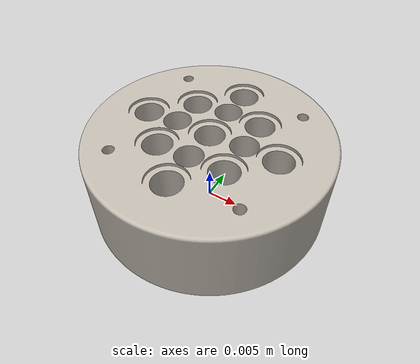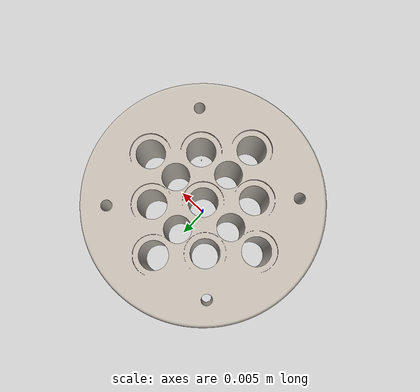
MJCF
<mujoco model="link7">
  <default>
    <default class="visual">
      <geom group="2" type="mesh" contype="0" conaffinity="0"/>
    </default>
    <default class="collision">
      <geom group="3" type="mesh"/>
    </default>
  </default>
  <asset>
    <texture type="2d" name="link7" file="link7.png"/>
    <material name="material0.006" texture="link7" specular="0.0" shininess="0.25"/>
    <mesh file="link7.obj"/>
  </asset>
  <worldbody>
    <body name="link7">
      <geom material="material0.006" mesh="link7" class="visual"/>
      <geom mesh="link7" class="collision"/>
    </body>
  </worldbody>
</mujoco>
